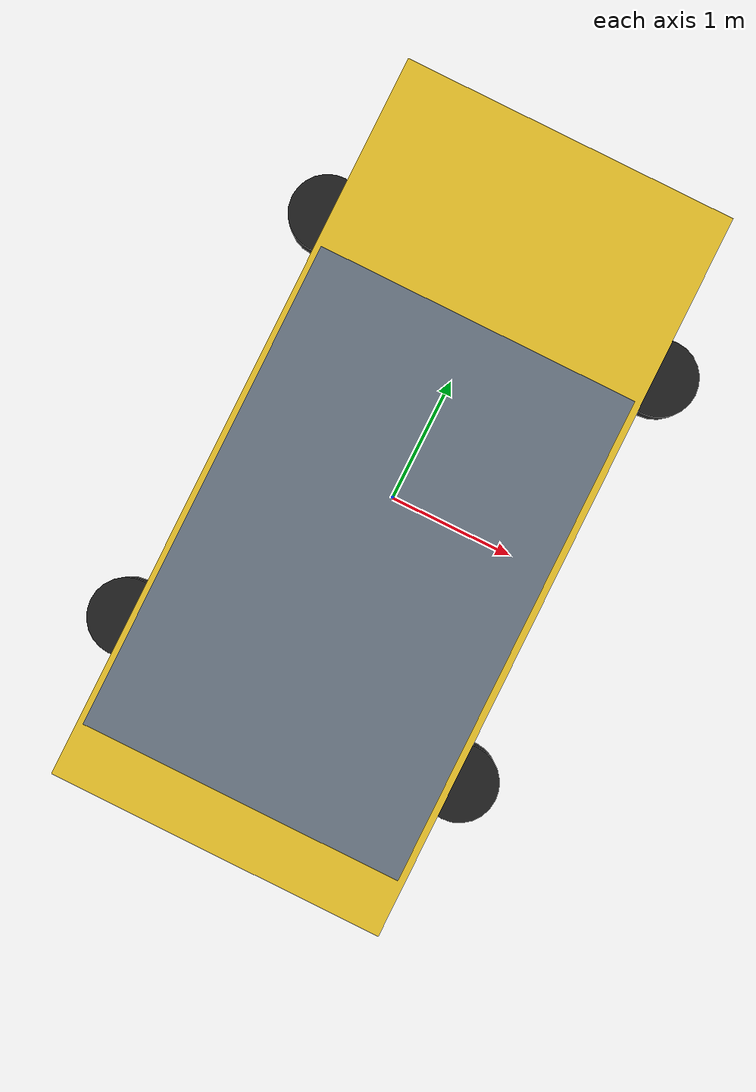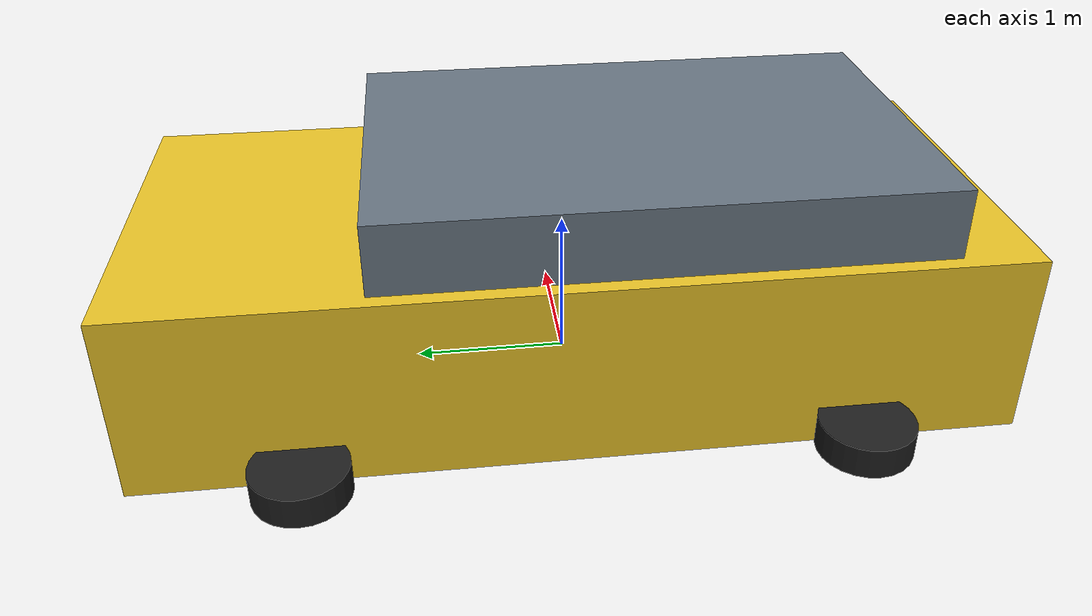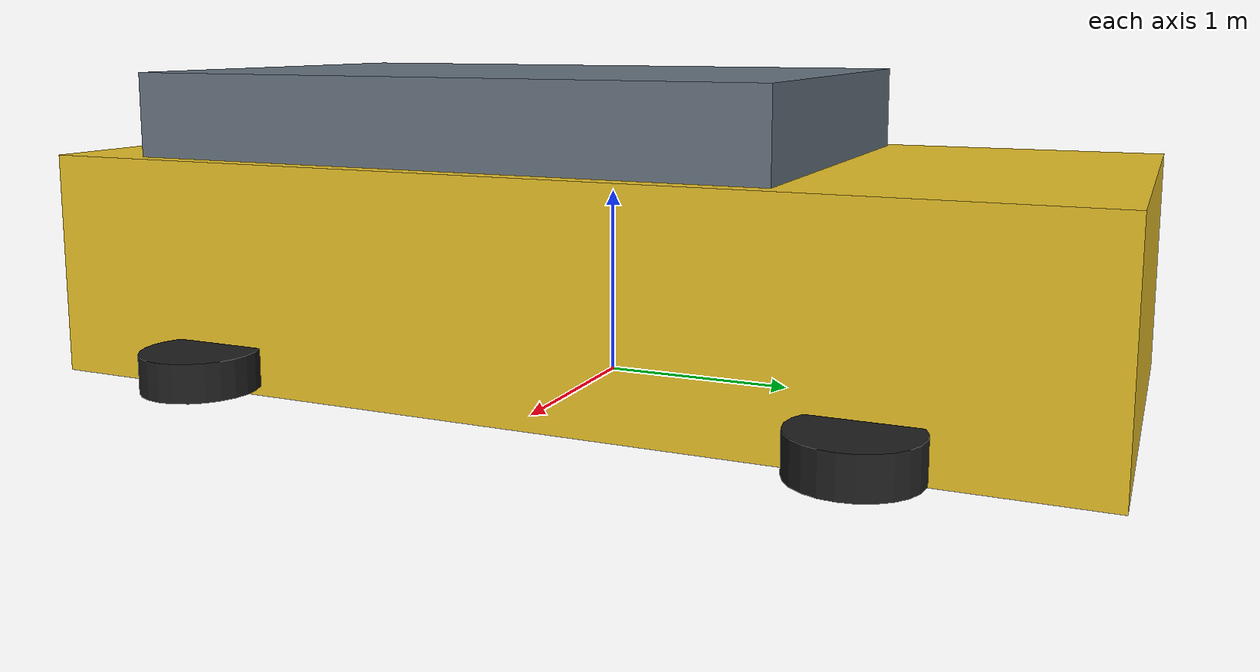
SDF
<?xml version="1.0"?>
<sdf version="1.9">
  <model name="bus">
    <static>true</static>
    <link name="body">
      <collision name="col">
        <geometry><box><size>2.5 5.5 1.2</size></box></geometry>
      </collision>
      <visual name="body_vis">
        <pose>0 0 0.6 0 0 0</pose>
        <geometry><box><size>2.5 5.5 1.2</size></box></geometry>
        <material>
          <ambient>0.85 0.7 0.1 1</ambient>
          <diffuse>0.9 0.75 0.15 1</diffuse>
          <specular>0.3 0.25 0.05 1</specular>
        </material>
      </visual>
      <!-- Cabin -->
      <visual name="cabin">
        <pose>0 -0.5 1.3 0 0 0</pose>
        <geometry><box><size>2.3 3.5 0.7</size></box></geometry>
        <material>
          <ambient>0.35 0.4 0.45 1</ambient>
          <diffuse>0.4 0.45 0.5 1</diffuse>
          <specular>0.3 0.3 0.3 1</specular>
        </material>
      </visual>
      <!-- Windows -->
      <visual name="windows">
        <pose>0 -0.5 1.3 0 0 0</pose>
        <geometry><box><size>2.1 3.3 0.5</size></box></geometry>
        <material>
          <ambient>0.4 0.5 0.7 0.6</ambient>
          <diffuse>0.45 0.55 0.75 0.6</diffuse>
          <specular>0.4 0.4 0.4 1</specular>
        </material>
      </visual>
      <!-- Wheels -->
      <visual name="wheel_fl">
        <pose>-1.4 1.7 0.15 0 0 0</pose>
        <geometry><cylinder><radius>0.3</radius><length>0.2</length></cylinder></geometry>
        <material><ambient>0.08 0.08 0.08 1</ambient><diffuse>0.12 0.12 0.12 1</diffuse></material>
      </visual>
      <visual name="wheel_fr">
        <pose>1.4 1.7 0.15 0 0 0</pose>
        <geometry><cylinder><radius>0.3</radius><length>0.2</length></cylinder></geometry>
        <material><ambient>0.08 0.08 0.08 1</ambient><diffuse>0.12 0.12 0.12 1</diffuse></material>
      </visual>
      <visual name="wheel_rl">
        <pose>-1.4 -1.7 0.15 0 0 0</pose>
        <geometry><cylinder><radius>0.3</radius><length>0.2</length></cylinder></geometry>
        <material><ambient>0.08 0.08 0.08 1</ambient><diffuse>0.12 0.12 0.12 1</diffuse></material>
      </visual>
      <visual name="wheel_rr">
        <pose>1.4 -1.7 0.15 0 0 0</pose>
        <geometry><cylinder><radius>0.3</radius><length>0.2</length></cylinder></geometry>
        <material><ambient>0.08 0.08 0.08 1</ambient><diffuse>0.12 0.12 0.12 1</diffuse></material>
      </visual>
    </link>
  </model>
</sdf>
